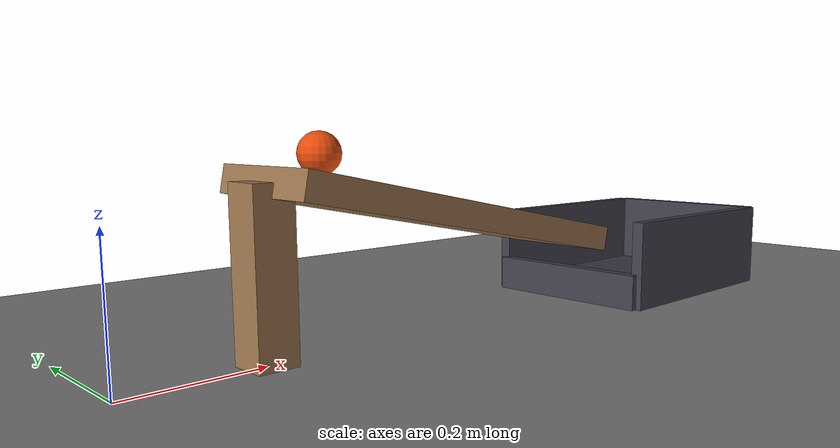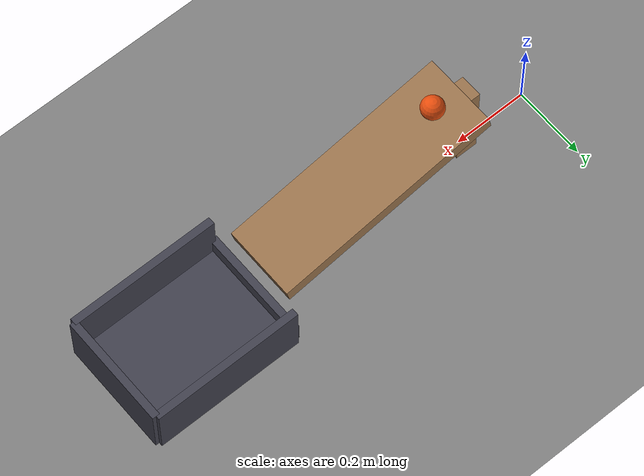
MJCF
<mujoco model="ball_down_a_ramp_into_a_cup">
  <compiler angle="radian"/>
  <option timestep="0.002"/>
  <worldbody>
    <geom name="floor" type="plane" size="8 8 0.1" friction="0.8 0.005 0.002"/>
    <body name="ramp">
      <geom name="ramp_deck" type="box" pos="0.5 0 0.18" size="0.305941 0.1 0.02" euler="0 0.197396 0" friction="0.8 0.005 0.002" rgba="0.6 0.45 0.3 1"/>
      <geom name="ramp_leg" type="box" pos="0.2 0 0.12" size="0.03 0.03 0.12" friction="0.8 0.005 0.002" rgba="0.6 0.45 0.3 1"/>
    </body>
    <body name="cup">
      <geom name="cup_base" type="box" pos="1.02 0 0.01" size="0.2 0.15 0.01" friction="0.9 0.02 0.01" solref="0.01 1" rgba="0.25 0.25 0.3 1"/>
      <geom name="cup_near_wall" type="box" pos="0.82 0 0.03" size="0.01 0.15 0.03" friction="0.9 0.02 0.01" solref="0.01 1" rgba="0.25 0.25 0.3 1"/>
      <geom name="cup_far_wall" type="box" pos="1.22 0 0.075" size="0.01 0.15 0.075" friction="0.9 0.02 0.01" solref="0.01 1" rgba="0.25 0.25 0.3 1"/>
      <geom name="cup_left_wall" type="box" pos="1.02 0.15 0.075" size="0.2 0.01 0.075" friction="0.9 0.02 0.01" solref="0.01 1" rgba="0.25 0.25 0.3 1"/>
      <geom name="cup_right_wall" type="box" pos="1.02 -0.15 0.075" size="0.2 0.01 0.075" friction="0.9 0.02 0.01" solref="0.01 1" rgba="0.25 0.25 0.3 1"/>
    </body>
    <body name="ball" pos="0.288252 0 0.27334">
      <freejoint/>
      <geom name="ball" type="sphere" pos="0 0 0" size="0.03" mass="0.1" condim="6" friction="0.8 0.01 0.004" solref="0.01 1" rgba="0.9 0.3 0.05 1"/>
    </body>
  </worldbody>
  <keyframe>
    <key name="start" qpos="0.288252 0 0.27334 1 0 0 0" qvel="0 0 0 0 0 0"/>
  </keyframe>
</mujoco>
